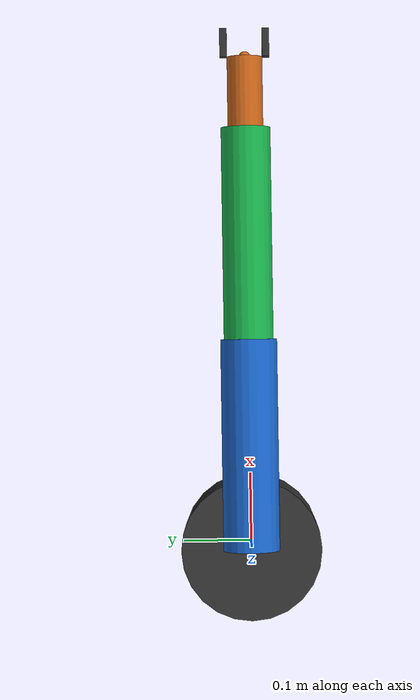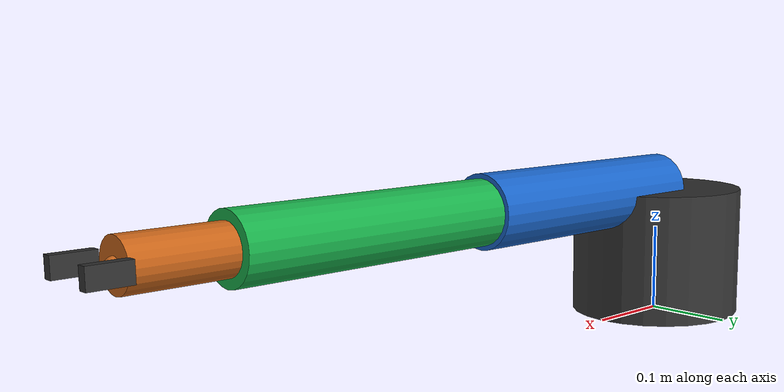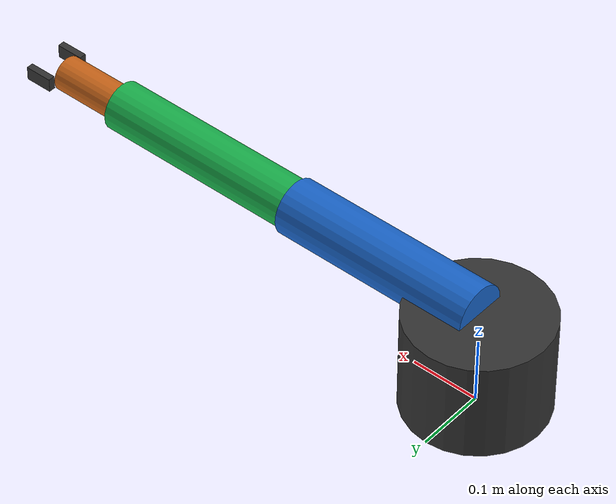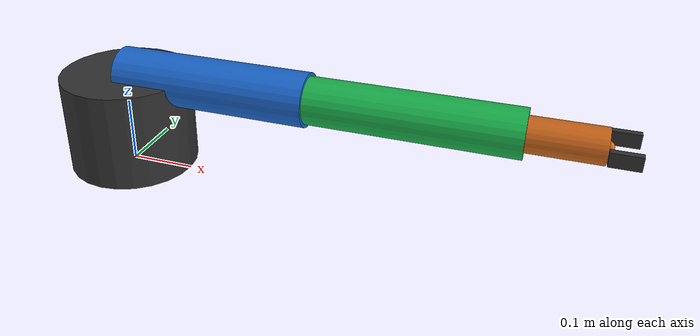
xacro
<?xml version="1.0"?>

<robot name="manipulator" xmlns:xacro="http://www.ros.org/wiki/xacro">

  <!-- INCLUDE MODULAR XACRO FILES -->

  <xacro:include filename="$(find manipulator_description)/urdf/materials.xacro"/>
  <xacro:include filename="$(find manipulator_description)/urdf/inertial_macros.xacro"/>
  <xacro:include filename="$(find manipulator_description)/urdf/gazebo.xacro"/>
  <xacro:include filename="$(find manipulator_description)/urdf/ros2_control.xacro"/>

  <!-- ROBOT DIMENSIONS -->

  <!-- Base -->
  <xacro:property name="base_height" value="0.15"/>
  <xacro:property name="base_radius" value="0.10"/>

  <!-- Arm links -->
  <xacro:property name="link1_length" value="0.30"/>
  <xacro:property name="link1_radius" value="0.040"/>

  <xacro:property name="link2_length" value="0.30"/>
  <xacro:property name="link2_radius" value="0.035"/>

  <!-- End effector -->
  <xacro:property name="ee_length" value="0.10"/>
  <xacro:property name="ee_radius" value="0.025"/>

  <!-- ROBOT MASSES -->

  <xacro:property name="base_mass" value="1.5"/>
  <xacro:property name="link1_mass" value="0.8"/>
  <xacro:property name="link2_mass" value="0.6"/>
  <xacro:property name="ee_mass" value="0.2"/>

  <!-- BASE LINK -->

  <link name="base_link">

    <visual>
      <origin xyz="0 0 ${base_height / 2}" rpy="0 0 0"/>

      <geometry>
        <cylinder
          radius="${base_radius}"
          length="${base_height}"/>
      </geometry>

      <material name="base_material"/>
    </visual>

    <collision>
      <origin xyz="0 0 ${base_height / 2}" rpy="0 0 0"/>

      <geometry>
        <cylinder
          radius="${base_radius}"
          length="${base_height}"/>
      </geometry>
    </collision>

    <xacro:cylinder_inertia_z
      mass="${base_mass}"
      radius="${base_radius}"
      length="${base_height}"/>

  </link>

  <!-- JOINT 1 -->
  <!-- Revolute joint about Z  -->

  <joint name="joint1" type="revolute">

    <parent link="base_link"/>
    <child link="link1"/>

    <origin
      xyz="0 0 ${base_height}"
      rpy="0 0 0"/>

    <axis xyz="0 0 1"/>

    <limit
      lower="-3.14159265"
      upper="3.14159265"
      effort="10"
      velocity="1.0"/>

  </joint>

  <!-- LINK 1 -->
  <!-- Cylinder along X -->

  <link name="link1">

    <visual>
      <origin
        xyz="${link1_length / 2} 0 0"
        rpy="0 1.57079633 0"/>

      <geometry>
        <cylinder
          radius="${link1_radius}"
          length="${link1_length}"/>
      </geometry>

      <material name="link1_material"/>
    </visual>

    <collision>
      <origin
        xyz="${link1_length / 2} 0 0"
        rpy="0 1.57079633 0"/>

      <geometry>
        <cylinder
          radius="${link1_radius}"
          length="${link1_length}"/>
      </geometry>
    </collision>

    <xacro:cylinder_inertia_x
      mass="${link1_mass}"
      radius="${link1_radius}"
      length="${link1_length}"/>

  </link>

  <!-- JOINT 2 -->
  <!-- Revolute joint about Y -->

  <joint name="joint2" type="revolute">

    <parent link="link1"/>
    <child link="link2"/>

    <origin
      xyz="${link1_length} 0 0"
      rpy="0 0 0"/>

    <axis xyz="0 1 0"/>

    <limit
      lower="-1.57079633"
      upper="1.57079633"
      effort="10"
      velocity="1.0"/>

  </joint>

  <!-- LINK 2 -->
  <!-- Cylinder along X -->

  <link name="link2">

    <visual>
      <origin
        xyz="${link2_length / 2} 0 0"
        rpy="0 1.57079633 0"/>

      <geometry>
        <cylinder
          radius="${link2_radius}"
          length="${link2_length}"/>
      </geometry>

      <material name="link2_material"/>
    </visual>

    <collision>
      <origin
        xyz="${link2_length / 2} 0 0"
        rpy="0 1.57079633 0"/>

      <geometry>
        <cylinder
          radius="${link2_radius}"
          length="${link2_length}"/>
      </geometry>
    </collision>

    <xacro:cylinder_inertia_x
      mass="${link2_mass}"
      radius="${link2_radius}"
      length="${link2_length}"/>

  </link>

  <!-- JOINT 3 -->
  <!-- Revolute joint about Y -->

  <joint name="joint3" type="revolute">

    <parent link="link2"/>
    <child link="end_effector"/>

    <origin
      xyz="${link2_length} 0 0"
      rpy="0 0 0"/>

    <axis xyz="0 1 0"/>

    <limit
      lower="-2.35619449"
      upper="2.35619449"
      effort="5"
      velocity="1.0"/>

  </joint>

  <!-- END EFFECTOR -->

  <link name="end_effector">

    <visual>
      <origin
        xyz="${ee_length / 2} 0 0"
        rpy="0 1.57079633 0"/>

      <geometry>
        <cylinder
          radius="${ee_radius}"
          length="${ee_length}"/>
      </geometry>

      <material name="end_effector_material"/>
    </visual>

    <collision>
      <origin
        xyz="${ee_length / 2} 0 0"
        rpy="0 1.57079633 0"/>

      <geometry>
        <cylinder
          radius="${ee_radius}"
          length="${ee_length}"/>
      </geometry>
    </collision>

    <xacro:cylinder_inertia_x
      mass="${ee_mass}"
      radius="${ee_radius}"
      length="${ee_length}"/>

  </link>

  <!-- Gripper (uses ee_length, must be included after properties above) -->
  <xacro:include filename="$(find manipulator_description)/urdf/gripper.xacro"/>

</robot>

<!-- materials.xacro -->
<robot xmlns:xacro="http://www.ros.org/wiki/xacro">

  <!-- Base material -->
  <material name="base_material">
    <color rgba="0.2 0.2 0.2 1.0"/>
  </material>

  <!-- Link 1 material -->
  <material name="link1_material">
    <color rgba="0.1 0.4 0.8 1.0"/>
  </material>

  <!-- Link 2 material -->
  <material name="link2_material">
    <color rgba="0.1 0.7 0.3 1.0"/>
  </material>

  <!-- End-effector material -->
  <material name="end_effector_material">
    <color rgba="0.8 0.4 0.1 1.0"/>
  </material>

</robot>

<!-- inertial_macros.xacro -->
<robot xmlns:xacro="http://www.ros.org/wiki/xacro">

  <!--
    Cylinder whose longitudinal axis is the X-axis.

    Ixx = 1/2 m r^2
    Iyy = Izz = 1/12 m (3r^2 + L^2)
  -->

  <xacro:macro name="cylinder_inertia_x" params="mass radius length">

    <inertial>

      <origin xyz="${length / 2} 0 0" rpy="0 0 0"/>

      <mass value="${mass}"/>

      <inertia
        ixx="${0.5 * mass * radius * radius}"
        ixy="0.0"
        ixz="0.0"
        iyy="${(1.0 / 12.0) * mass * (3.0 * radius * radius + length * length)}"
        iyz="0.0"
        izz="${(1.0 / 12.0) * mass * (3.0 * radius * radius + length * length)}"/>

    </inertial>

  </xacro:macro>

  <!--
    Cylinder whose longitudinal axis is the Z-axis.

    Ixx = Iyy = 1/12 m (3r^2 + L^2)
    Izz = 1/2 m r^2
  -->

  <xacro:macro name="cylinder_inertia_z" params="mass radius length">

    <inertial>

      <origin xyz="0 0 ${length / 2}" rpy="0 0 0"/>

      <mass value="${mass}"/>

      <inertia
        ixx="${(1.0 / 12.0) * mass * (3.0 * radius * radius + length * length)}"
        ixy="0.0"
        ixz="0.0"
        iyy="${(1.0 / 12.0) * mass * (3.0 * radius * radius + length * length)}"
        iyz="0.0"
        izz="${0.5 * mass * radius * radius}"/>

    </inertial>

  </xacro:macro>

</robot>

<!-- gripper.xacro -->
<robot xmlns:xacro="http://www.ros.org/wiki/xacro">

  <xacro:property name="ee_tip_offset" value="${ee_length}"/>

  <xacro:property name="gripper_finger_offset" value="0.03"/>
  <xacro:property name="gripper_stroke" value="0.02"/>
  <xacro:property name="finger_length" value="0.04"/>
  <xacro:property name="finger_width" value="0.01"/>
  <xacro:property name="finger_height" value="0.02"/>
  <xacro:property name="finger_mass" value="0.02"/>

  <link name="ee_tip">
    <visual>
      <geometry>
        <sphere radius="0.008"/>
      </geometry>
      <material name="end_effector_material"/>
    </visual>
    <collision>
      <geometry>
        <sphere radius="0.008"/>
      </geometry>
    </collision>
    <inertial>
      <mass value="0.001"/>
      <inertia ixx="1e-7" ixy="0.0" ixz="0.0" iyy="1e-7" iyz="0.0" izz="1e-7"/>
    </inertial>
  </link>

  <joint name="ee_tip_joint" type="fixed">
    <parent link="end_effector"/>
    <child link="ee_tip"/>
    <origin xyz="${ee_tip_offset} 0 0" rpy="0 0 0"/>
  </joint>

  <!-- LEFT FINGER (+Y side, closes toward -Y) -->
  <link name="left_finger">
    <visual>
      <origin xyz="${finger_length/2} 0 0" rpy="0 0 0"/>
      <geometry>
        <box size="${finger_length} ${finger_width} ${finger_height}"/>
      </geometry>
      <material name="base_material"/>
    </visual>
    <collision>
      <origin xyz="${finger_length/2} 0 0" rpy="0 0 0"/>
      <geometry>
        <box size="${finger_length} ${finger_width} ${finger_height}"/>
      </geometry>
    </collision>
    <inertial>
      <mass value="${finger_mass}"/>
      <inertia ixx="1e-6" ixy="0.0" ixz="0.0" iyy="1e-6" iyz="0.0" izz="1e-6"/>
    </inertial>
  </link>

  <joint name="left_finger_joint" type="prismatic">
    <parent link="ee_tip"/>
    <child link="left_finger"/>
    <origin xyz="0 ${gripper_finger_offset} 0" rpy="0 0 0"/>
    <axis xyz="0 1 0"/>
    <limit lower="-${gripper_stroke}" upper="0.0" effort="5.0" velocity="0.05"/>
  </joint>

  <!-- RIGHT FINGER (-Y side, closes toward +Y) -->
  <link name="right_finger">
    <visual>
      <origin xyz="${finger_length/2} 0 0" rpy="0 0 0"/>
      <geometry>
        <box size="${finger_length} ${finger_width} ${finger_height}"/>
      </geometry>
      <material name="base_material"/>
    </visual>
    <collision>
      <origin xyz="${finger_length/2} 0 0" rpy="0 0 0"/>
      <geometry>
        <box size="${finger_length} ${finger_width} ${finger_height}"/>
      </geometry>
    </collision>
    <inertial>
      <mass value="${finger_mass}"/>
      <inertia ixx="1e-6" ixy="0.0" ixz="0.0" iyy="1e-6" iyz="0.0" izz="1e-6"/>
    </inertial>
  </link>

  <joint name="right_finger_joint" type="prismatic">
    <parent link="ee_tip"/>
    <child link="right_finger"/>
    <origin xyz="0 -${gripper_finger_offset} 0" rpy="0 0 0"/>
    <axis xyz="0 1 0"/>
    <limit lower="0.0" upper="${gripper_stroke}" effort="5.0" velocity="0.05"/>
  </joint>

  <gazebo>
    <plugin filename="gz-sim-detachable-joint-system"
            name="gz::sim::systems::DetachableJoint">
      <parent_link>end_effector</parent_link>
      <child_model>pick_object</child_model>
      <child_link>object_link</child_link>
      <attach_topic>/gripper/attach</attach_topic>
      <detach_topic>/gripper/detach</detach_topic>
      <output_topic>/gripper/state</output_topic>
    </plugin>
  </gazebo>

</robot>
